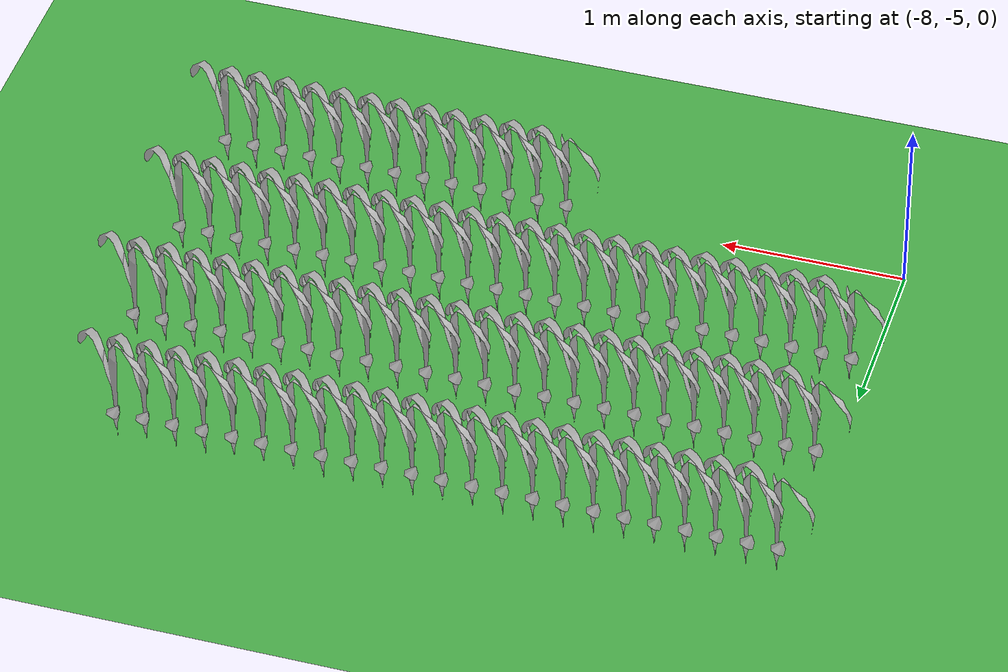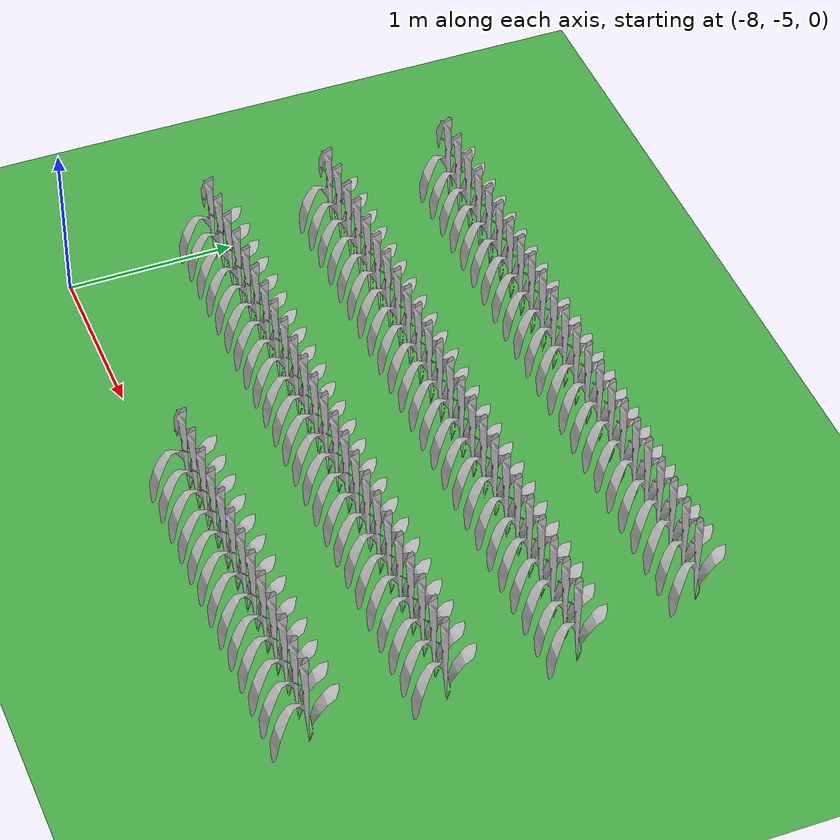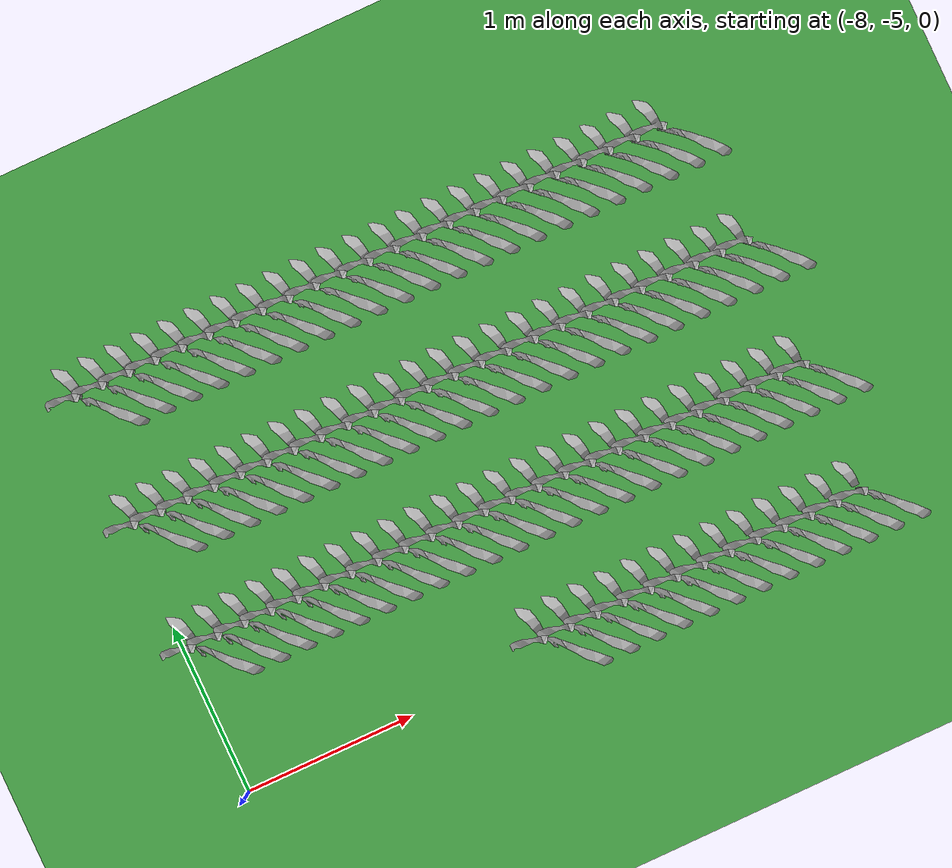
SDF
<sdf version="1.9">
 <world name="farm_world">
  <model name="ground_plane">
   <static>true</static>
   <link name="link">
    <collision name="collision">
     <geometry><plane><normal>0 0 1</normal><size>100 100</size></plane></geometry>
    </collision>
    <visual name="visual">
     <geometry><plane><normal>0 0 1</normal><size>100 100</size></plane></geometry>
     <material>
      <ambient>0.2 0.6 0.2 1</ambient>
      <diffuse>0.3 0.7 0.3 1</diffuse>
      <specular>0.1 0.1 0.1 1</specular>
     </material>
    </visual>
   </link>
  </model>
  <include><uri>model://maize_01</uri><name>maize_311</name><pose>-6.16 -4.88 0 0 0 0</pose></include>
  <include><uri>model://maize_01</uri><name>maize_312</name><pose>-6.00 -4.88 0 0 0 0</pose></include>
  <include><uri>model://maize_01</uri><name>maize_313</name><pose>-5.84 -4.88 0 0 0 0</pose></include>
  <include><uri>model://maize_01</uri><name>maize_314</name><pose>-5.68 -4.88 0 0 0 0</pose></include>
  <include><uri>model://maize_01</uri><name>maize_315</name><pose>-5.52 -4.88 0 0 0 0</pose></include>
  <include><uri>model://maize_01</uri><name>maize_316</name><pose>-5.36 -4.88 0 0 0 0</pose></include>
  <include><uri>model://maize_01</uri><name>maize_317</name><pose>-5.20 -4.88 0 0 0 0</pose></include>
  <include><uri>model://maize_01</uri><name>maize_318</name><pose>-5.04 -4.88 0 0 0 0</pose></include>
  <include><uri>model://maize_01</uri><name>maize_319</name><pose>-4.88 -4.88 0 0 0 0</pose></include>
  <include><uri>model://maize_01</uri><name>maize_320</name><pose>-4.72 -4.88 0 0 0 0</pose></include>
  <include><uri>model://maize_01</uri><name>maize_321</name><pose>-4.56 -4.88 0 0 0 0</pose></include>
  <include><uri>model://maize_01</uri><name>maize_322</name><pose>-4.40 -4.88 0 0 0 0</pose></include>
  <include><uri>model://maize_01</uri><name>maize_323</name><pose>-4.24 -4.88 0 0 0 0</pose></include>
  <include><uri>model://maize_01</uri><name>maize_400</name><pose>-7.92 -4.12 0 0 0 0</pose></include>
  <include><uri>model://maize_01</uri><name>maize_401</name><pose>-7.76 -4.12 0 0 0 0</pose></include>
  <include><uri>model://maize_01</uri><name>maize_402</name><pose>-7.60 -4.12 0 0 0 0</pose></include>
  <include><uri>model://maize_01</uri><name>maize_403</name><pose>-7.44 -4.12 0 0 0 0</pose></include>
  <include><uri>model://maize_01</uri><name>maize_404</name><pose>-7.28 -4.12 0 0 0 0</pose></include>
  <include><uri>model://maize_01</uri><name>maize_405</name><pose>-7.12 -4.12 0 0 0 0</pose></include>
  <include><uri>model://maize_01</uri><name>maize_406</name><pose>-6.96 -4.12 0 0 0 0</pose></include>
  <include><uri>model://maize_01</uri><name>maize_407</name><pose>-6.80 -4.12 0 0 0 0</pose></include>
  <include><uri>model://maize_01</uri><name>maize_408</name><pose>-6.64 -4.12 0 0 0 0</pose></include>
  <include><uri>model://maize_01</uri><name>maize_409</name><pose>-6.48 -4.12 0 0 0 0</pose></include>
  <include><uri>model://maize_01</uri><name>maize_410</name><pose>-6.32 -4.12 0 0 0 0</pose></include>
  <include><uri>model://maize_01</uri><name>maize_411</name><pose>-6.16 -4.12 0 0 0 0</pose></include>
  <include><uri>model://maize_01</uri><name>maize_412</name><pose>-6.00 -4.12 0 0 0 0</pose></include>
  <include><uri>model://maize_01</uri><name>maize_413</name><pose>-5.84 -4.12 0 0 0 0</pose></include>
  <include><uri>model://maize_01</uri><name>maize_414</name><pose>-5.68 -4.12 0 0 0 0</pose></include>
  <include><uri>model://maize_01</uri><name>maize_415</name><pose>-5.52 -4.12 0 0 0 0</pose></include>
  <include><uri>model://maize_01</uri><name>maize_416</name><pose>-5.36 -4.12 0 0 0 0</pose></include>
  <include><uri>model://maize_01</uri><name>maize_417</name><pose>-5.20 -4.12 0 0 0 0</pose></include>
  <include><uri>model://maize_01</uri><name>maize_418</name><pose>-5.04 -4.12 0 0 0 0</pose></include>
  <include><uri>model://maize_01</uri><name>maize_419</name><pose>-4.88 -4.12 0 0 0 0</pose></include>
  <include><uri>model://maize_01</uri><name>maize_420</name><pose>-4.72 -4.12 0 0 0 0</pose></include>
  <include><uri>model://maize_01</uri><name>maize_421</name><pose>-4.56 -4.12 0 0 0 0</pose></include>
  <include><uri>model://maize_01</uri><name>maize_422</name><pose>-4.40 -4.12 0 0 0 0</pose></include>
  <include><uri>model://maize_01</uri><name>maize_423</name><pose>-4.24 -4.12 0 0 0 0</pose></include>
  <include><uri>model://maize_01</uri><name>maize_500</name><pose>-7.92 -3.38 0 0 0 0</pose></include>
  <include><uri>model://maize_01</uri><name>maize_501</name><pose>-7.76 -3.38 0 0 0 0</pose></include>
  <include><uri>model://maize_01</uri><name>maize_502</name><pose>-7.60 -3.38 0 0 0 0</pose></include>
  <include><uri>model://maize_01</uri><name>maize_503</name><pose>-7.44 -3.38 0 0 0 0</pose></include>
  <include><uri>model://maize_01</uri><name>maize_504</name><pose>-7.28 -3.38 0 0 0 0</pose></include>
  <include><uri>model://maize_01</uri><name>maize_505</name><pose>-7.12 -3.38 0 0 0 0</pose></include>
  <include><uri>model://maize_01</uri><name>maize_506</name><pose>-6.96 -3.38 0 0 0 0</pose></include>
  <include><uri>model://maize_01</uri><name>maize_507</name><pose>-6.80 -3.38 0 0 0 0</pose></include>
  <include><uri>model://maize_01</uri><name>maize_508</name><pose>-6.64 -3.38 0 0 0 0</pose></include>
  <include><uri>model://maize_01</uri><name>maize_509</name><pose>-6.48 -3.38 0 0 0 0</pose></include>
  <include><uri>model://maize_01</uri><name>maize_510</name><pose>-6.32 -3.38 0 0 0 0</pose></include>
  <include><uri>model://maize_01</uri><name>maize_511</name><pose>-6.16 -3.38 0 0 0 0</pose></include>
  <include><uri>model://maize_01</uri><name>maize_512</name><pose>-6.00 -3.38 0 0 0 0</pose></include>
  <include><uri>model://maize_01</uri><name>maize_513</name><pose>-5.84 -3.38 0 0 0 0</pose></include>
  <include><uri>model://maize_01</uri><name>maize_514</name><pose>-5.68 -3.38 0 0 0 0</pose></include>
  <include><uri>model://maize_01</uri><name>maize_515</name><pose>-5.52 -3.38 0 0 0 0</pose></include>
  <include><uri>model://maize_01</uri><name>maize_516</name><pose>-5.36 -3.38 0 0 0 0</pose></include>
  <include><uri>model://maize_01</uri><name>maize_517</name><pose>-5.20 -3.38 0 0 0 0</pose></include>
  <include><uri>model://maize_01</uri><name>maize_518</name><pose>-5.04 -3.38 0 0 0 0</pose></include>
  <include><uri>model://maize_01</uri><name>maize_519</name><pose>-4.88 -3.38 0 0 0 0</pose></include>
  <include><uri>model://maize_01</uri><name>maize_520</name><pose>-4.72 -3.38 0 0 0 0</pose></include>
  <include><uri>model://maize_01</uri><name>maize_521</name><pose>-4.56 -3.38 0 0 0 0</pose></include>
  <include><uri>model://maize_01</uri><name>maize_522</name><pose>-4.40 -3.38 0 0 0 0</pose></include>
  <include><uri>model://maize_01</uri><name>maize_523</name><pose>-4.24 -3.38 0 0 0 0</pose></include>
  <include><uri>model://maize_01</uri><name>maize_600</name><pose>-7.92 -2.62 0 0 0 0</pose></include>
  <include><uri>model://maize_01</uri><name>maize_601</name><pose>-7.76 -2.62 0 0 0 0</pose></include>
  <include><uri>model://maize_01</uri><name>maize_602</name><pose>-7.60 -2.62 0 0 0 0</pose></include>
  <include><uri>model://maize_01</uri><name>maize_603</name><pose>-7.44 -2.62 0 0 0 0</pose></include>
  <include><uri>model://maize_01</uri><name>maize_604</name><pose>-7.28 -2.62 0 0 0 0</pose></include>
  <include><uri>model://maize_01</uri><name>maize_605</name><pose>-7.12 -2.62 0 0 0 0</pose></include>
  <include><uri>model://maize_01</uri><name>maize_606</name><pose>-6.96 -2.62 0 0 0 0</pose></include>
  <include><uri>model://maize_01</uri><name>maize_607</name><pose>-6.80 -2.62 0 0 0 0</pose></include>
  <include><uri>model://maize_01</uri><name>maize_608</name><pose>-6.64 -2.62 0 0 0 0</pose></include>
  <include><uri>model://maize_01</uri><name>maize_609</name><pose>-6.48 -2.62 0 0 0 0</pose></include>
  <include><uri>model://maize_01</uri><name>maize_610</name><pose>-6.32 -2.62 0 0 0 0</pose></include>
  <include><uri>model://maize_01</uri><name>maize_611</name><pose>-6.16 -2.62 0 0 0 0</pose></include>
  <include><uri>model://maize_01</uri><name>maize_612</name><pose>-6.00 -2.62 0 0 0 0</pose></include>
  <include><uri>model://maize_01</uri><name>maize_613</name><pose>-5.84 -2.62 0 0 0 0</pose></include>
  <include><uri>model://maize_01</uri><name>maize_614</name><pose>-5.68 -2.62 0 0 0 0</pose></include>
  <include><uri>model://maize_01</uri><name>maize_615</name><pose>-5.52 -2.62 0 0 0 0</pose></include>
  <include><uri>model://maize_01</uri><name>maize_616</name><pose>-5.36 -2.62 0 0 0 0</pose></include>
  <include><uri>model://maize_01</uri><name>maize_617</name><pose>-5.20 -2.62 0 0 0 0</pose></include>
  <include><uri>model://maize_01</uri><name>maize_618</name><pose>-5.04 -2.62 0 0 0 0</pose></include>
  <include><uri>model://maize_01</uri><name>maize_619</name><pose>-4.88 -2.62 0 0 0 0</pose></include>
  <include><uri>model://maize_01</uri><name>maize_620</name><pose>-4.72 -2.62 0 0 0 0</pose></include>
  <include><uri>model://maize_01</uri><name>maize_621</name><pose>-4.56 -2.62 0 0 0 0</pose></include>
  <include><uri>model://maize_01</uri><name>maize_622</name><pose>-4.40 -2.62 0 0 0 0</pose></include>
 </world>
</sdf>
